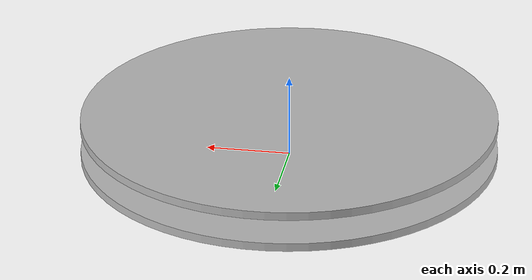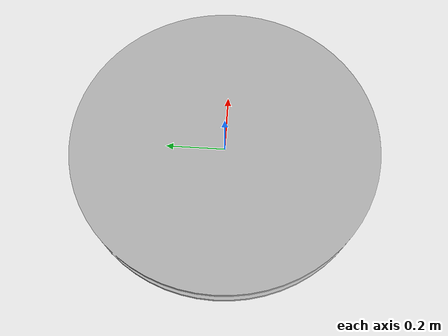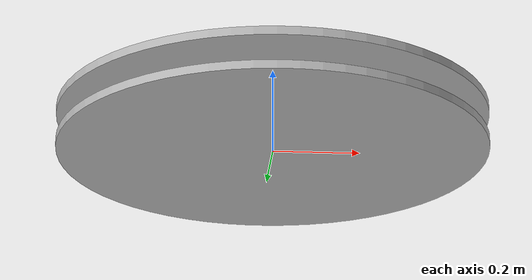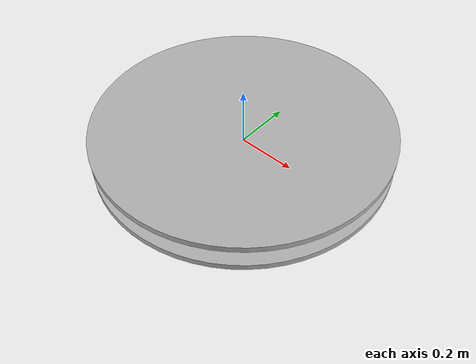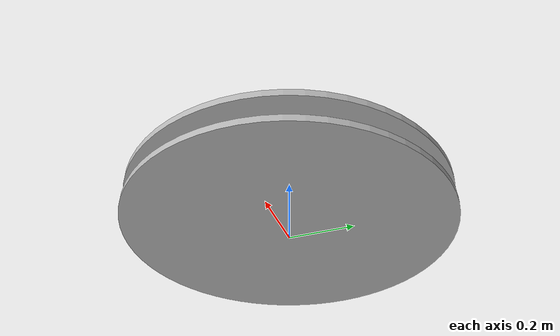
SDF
<?xml version="1.0" ?>
<sdf version="1.4">
  <model name="turning_table">
    <static>true</static>
    <link name="link">
      <pose>0 0 0 0 0 0</pose>
      <collision name="collision">
        <geometry>
          <mesh>
            <uri>model://turning_table/meshes/turning_table.dae</uri>
          </mesh>
        </geometry>
      </collision>
      <visual name="visual">
        <geometry>
          <mesh>
            <uri>model://turning_table/meshes/turning_table.dae</uri>
          </mesh>
        </geometry>
      </visual>
    </link>
  </model>
</sdf>
